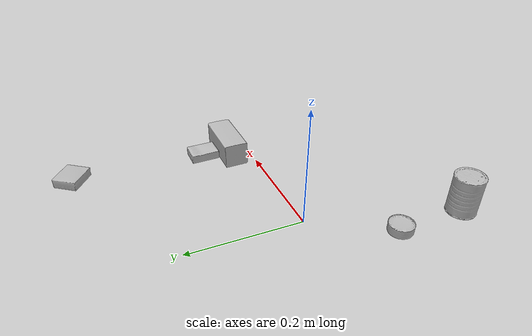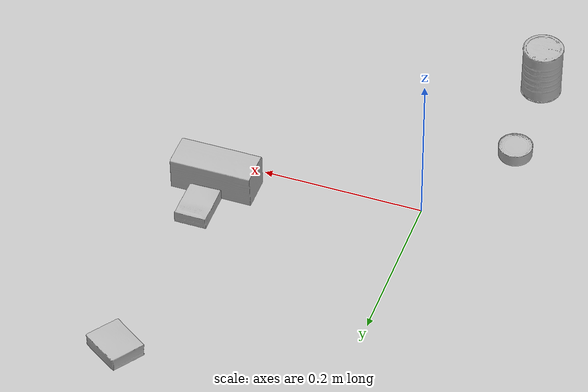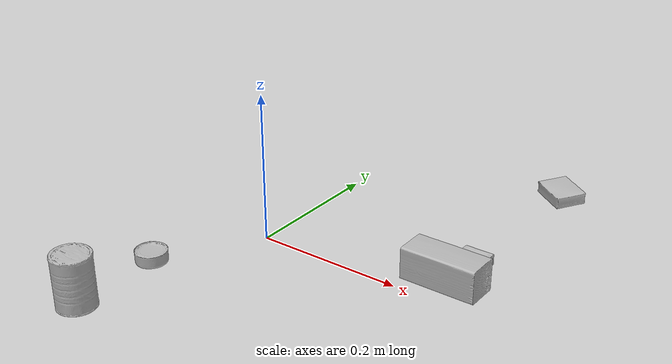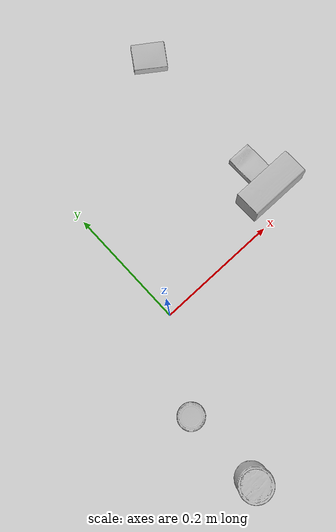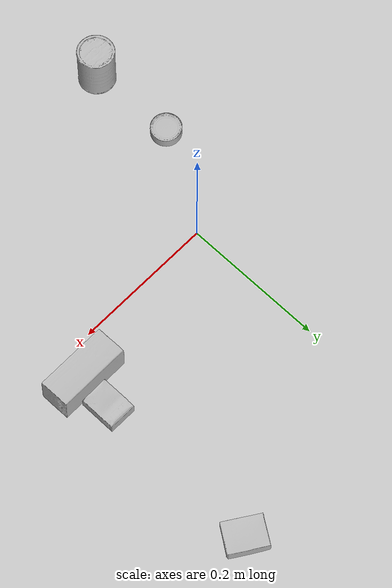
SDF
<sdf version="1.4">
  <world name="default">
    <light name="light1" type="point">
      <pose>0 0 1 0 0 0</pose>
      <diffuse>3 3 3 1</diffuse>
      <specular>3 3 3 1</specular>
    </light>
    <light name="light2" type="point">
      <pose>0 0.5 2 0 0 0</pose>
      <diffuse>1 1 1 1</diffuse>
      <specular>1 1 1 1</specular>
    </light>
    <light name="light3" type="point">
      <pose>0 0.5 2 0 0 0</pose>
      <diffuse>3 3 3 1</diffuse>
      <specular>3 3 3 1</specular>
    </light>
    <scene>
      <ambient>0.7 0.7 0.7</ambient>
    </scene>
    <model name="box1">
      <link name="link_box1">
        <collision name="default">
          <geometry>
            <mesh>
              <uri>model://pudding_box/collision_meshes/collision.obj</uri>
              <scale>0.5 0.5 0.5</scale>
            </mesh>
          </geometry>
          <surface>
            <friction>
              <ode>
                <mu>0.5</mu>
                <mu2>0.5</mu2>
              </ode>
            </friction>
          <contact>
        <ode>
            <max_vel>0</max_vel>
            <min_depth>0.0001</min_depth>
            <kp>1e8</kp>
        </ode>
    </contact></surface>
        </collision>
        <visual name="default">
          <geometry>
            <mesh>
              <uri>model://pudding_box/visual_meshes/visual.dae</uri>
              <scale>0.5 0.5 0.5</scale>
            </mesh>
          </geometry>
        </visual>
        <inertial>
          <mass>0.03999795392155647</mass>
          <pose>0.00024474109522998333 0.0004033942532259971 -0.0002594413817860186 0.005213101299265121 -0.006603799659933957 0.020079830747700592</pose>
          <inertia>
            <ixx>1.1303907e-05</ixx>
            <iyy>7.605349e-06</iyy>
            <izz>1.6693173e-05</izz>
            <ixy>0</ixy>
            <ixz>0</ixz>
            <iyz>0</iyz>
          </inertia>
        </inertial>
      </link>
      <pose>0.2598864436149597 0.3326176106929779 0.009862902574241161 0.022348110077214756 -0.01139201693009941 0.9768864018259177</pose>
    </model>
    <model name="box2">
      <link name="link_box2">
        <collision name="default">
          <geometry>
            <mesh>
              <uri>model://cracker_box/collision_meshes/collision.obj</uri>
              <scale>0.25 0.25 0.25</scale>
            </mesh>
          </geometry>
          <surface>
            <friction>
              <ode>
                <mu>0.5</mu>
                <mu2>0.5</mu2>
              </ode>
            </friction>
          <contact>
        <ode>
            <max_vel>0</max_vel>
            <min_depth>0.0001</min_depth>
            <kp>1e8</kp>
        </ode>
    </contact></surface>
        </collision>
        <visual name="default">
          <geometry>
            <mesh>
              <uri>model://cracker_box/visual_meshes/visual.dae</uri>
              <scale>0.25 0.25 0.25</scale>
            </mesh>
          </geometry>
        </visual>
        <inertial>
          <mass>0.046595875173807144</mass>
          <pose>0.00023660322767682374 6.358561950037256e-05 -0.0004257383698131889 -0.00031620768958073674 -0.011106491463008503 0.002546795235494827</pose>
          <inertia>
            <ixx>7.407444e-06</ixx>
            <iyy>1.2231146e-05</iyy>
            <izz>1.7454966e-05</izz>
            <ixy>0</ixy>
            <ixz>0</ixz>
            <iyz>0</iyz>
          </inertia>
        </inertial>
      </link>
      <pose>0.25327470898628235 0.08900608867406845 0.009120450355112553 -0.011788085217575813 -0.0073671251275744705 -1.5732319497304055</pose>
    </model>
    <model name="box3">
      <link name="link_box3">
        <collision name="default">
          <geometry>
            <mesh>
              <uri>model://wood_block/collision_meshes/collision.obj</uri>
              <scale>0.5 0.5 0.5</scale>
            </mesh>
          </geometry>
          <surface>
            <friction>
              <ode>
                <mu>0.5</mu>
                <mu2>0.5</mu2>
              </ode>
            </friction>
          <contact>
        <ode>
            <max_vel>0</max_vel>
            <min_depth>0.0001</min_depth>
            <kp>1e8</kp>
        </ode>
    </contact></surface>
        </collision>
        <visual name="default">
          <geometry>
            <mesh>
              <uri>model://wood_block/visual_meshes/visual.dae</uri>
              <scale>0.5 0.5 0.5</scale>
            </mesh>
          </geometry>
        </visual>
        <inertial>
          <mass>0.28600308299064636</mass>
          <pose>-2.9066577553749084e-06 -0.000285404734313488 0.00013204291462898254 -0.052207212015849935 -0.005192697210617926 -0.006861377963206113</pose>
          <inertia>
            <ixx>9.567885e-05</ixx>
            <iyy>0.00030224954</iyy>
            <izz>0.00030111894</izz>
            <ixy>0</ixy>
            <ixz>0</ixz>
            <iyz>0</iyz>
          </inertia>
        </inertial>
      </link>
      <pose>0.24816566705703735 0.040200456976890564 0.022629257291555405 -0.00520860826297499 0.0057187212205954225 0.004737736932497623</pose>
    </model>
    <model name="can1">
      <link name="link_can1">
        <collision name="default">
          <geometry>
            <mesh>
              <uri>model://master_chef_can/collision_meshes/collision.obj</uri>
              <scale>0.5 0.5 0.5</scale>
            </mesh>
          </geometry>
          <surface>
            <friction>
              <ode>
                <mu>0.5</mu>
                <mu2>0.5</mu2>
              </ode>
            </friction>
          <contact>
        <ode>
            <max_vel>0</max_vel>
            <min_depth>0.0001</min_depth>
            <kp>1e8</kp>
        </ode>
    </contact></surface>
        </collision>
        <visual name="default">
          <geometry>
            <mesh>
              <uri>model://master_chef_can/visual_meshes/visual.dae</uri>
              <scale>0.5 0.5 0.5</scale>
            </mesh>
          </geometry>
        </visual>
        <inertial>
          <mass>0.116209015250206</mass>
          <pose>-4.661964703700505e-05 1.3926850783718692e-07 -5.0799026212189347e-05 -0.001799512795725948 0.0006479254888938259 -0.6102617322721998</pose>
          <inertia>
            <ixx>6.820682e-05</ixx>
            <iyy>6.7704816e-05</iyy>
            <izz>3.768948e-05</izz>
            <ixy>0</ixy>
            <ixz>0</ixz>
            <iyz>0</iyz>
          </inertia>
        </inertial>
      </link>
      <pose>-0.07383330911397934 -0.2550598382949829 0.03530200198292732 -1.2234229217744846e-06 -7.121128079174379e-07 -2.6101660599023244</pose>
    </model>
    <model name="can2">
      <link name="link_can2">
        <collision name="default">
          <geometry>
            <mesh>
              <uri>model://tuna_fish_can/collision_meshes/collision.obj</uri>
              <scale>0.5 0.5 0.5</scale>
            </mesh>
          </geometry>
          <surface>
            <friction>
              <ode>
                <mu>0.5</mu>
                <mu2>0.5</mu2>
              </ode>
            </friction>
          <contact>
        <ode>
            <max_vel>0</max_vel>
            <min_depth>0.0001</min_depth>
            <kp>1e8</kp>
        </ode>
    </contact></surface>
        </collision>
        <visual name="default">
          <geometry>
            <mesh>
              <uri>model://tuna_fish_can/visual_meshes/visual.dae</uri>
              <scale>0.5 0.5 0.5</scale>
            </mesh>
          </geometry>
        </visual>
        <inertial>
          <mass>0.017585277557373047</mass>
          <pose>-2.03625786525663e-05 -7.2565176196803804e-06 -0.000526902440469712 -0.0017944765250671837 0.00017163661440384507 0.24054644931605637</pose>
          <inertia>
            <ixx>2.3775558e-06</ixx>
            <iyy>2.3676464e-06</iyy>
            <izz>4.0683376e-06</izz>
            <ixy>0</ixy>
            <ixz>0</ixz>
            <iyz>0</iyz>
          </inertia>
        </inertial>
      </link>
      <pose>-0.07789910584688187 -0.13103099167346954 0.00851999782025814 1.323515590935869e-08 -3.765268362013318e-09 0.22501523334454304</pose>
    </model>
  <physics type="ode">
      <max_contacts>50</max_contacts>
      <ode>
        <solver>
          <type>quick</type>
          <iters>75</iters>
        </solver>
        <constraints>
          <contact_max_correcting_vel>0</contact_max_correcting_vel>
          <contact_surface_layer>0</contact_surface_layer>
        </constraints>
      </ode>
    </physics></world>
</sdf>
